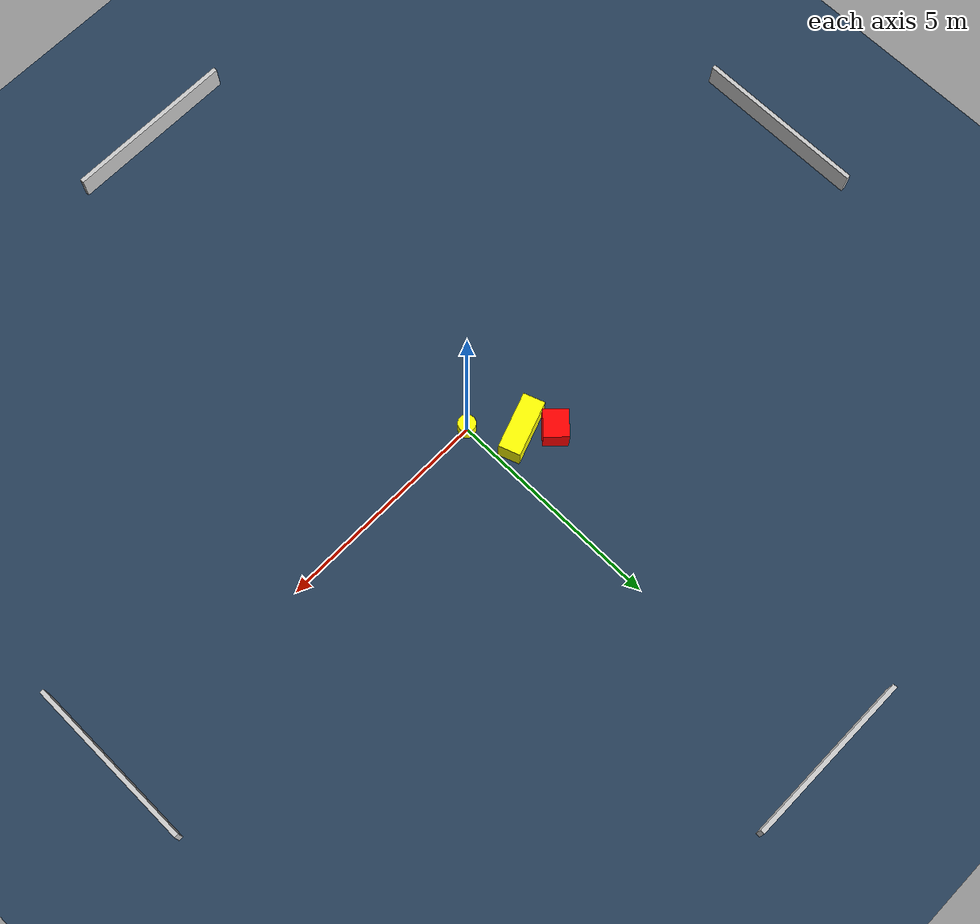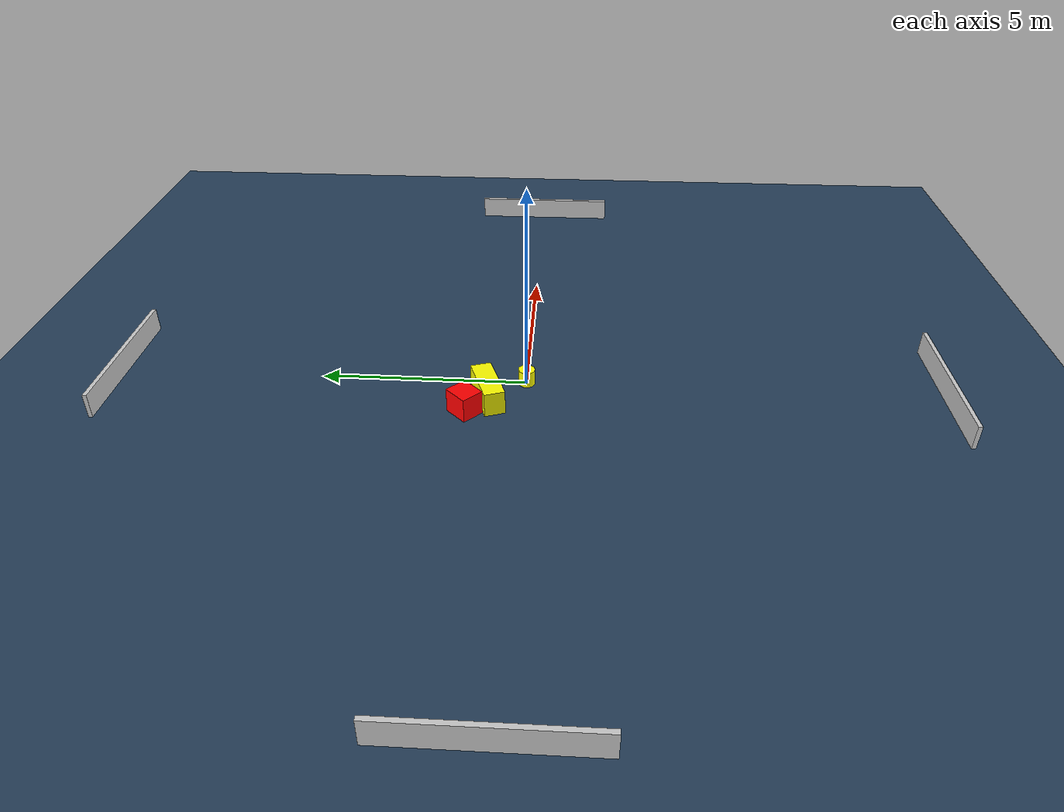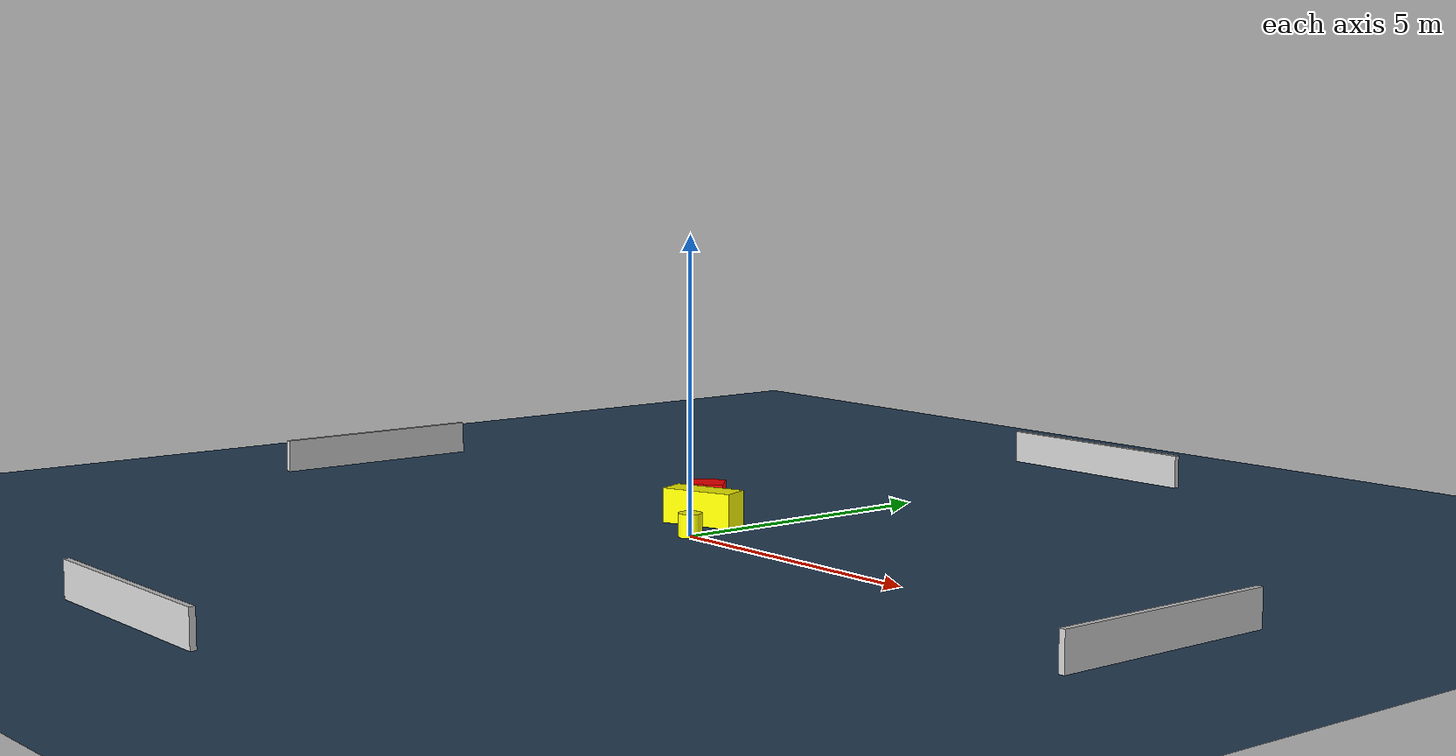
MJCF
<?xml version="1.0" ?>
<mujoco model="generated_environment">
  <option timestep="0.01" integrator="RK4" cone="elliptic"/>
  <default>
    <geom density="1"/>
  </default>
  <asset>
    <texture builtin="gradient" height="3072" name="skybox" rgb1="0.3 0.5 0.7" rgb2="0 0 0" type="skybox" width="512"/>
    <texture builtin="checker" height="300" name="groundplane" rgb1="0.2 0.3 0.4" rgb2="0.1 0.2 0.3" type="2d" width="300"/>
    <material name="groundplane" reflectance="0.2" texrepeat="5 5" texture="groundplane"/>
  </asset>
  <worldbody>
    <light dir="0 0 -1" directional="true" pos="0 0 1.5"/>
    <geom condim="3" friction="0.5 0.005 0.001" material="groundplane" name="floor" pos="0 0 0" size="0 0 0.05" type="plane"/>
    <body name="walls">
      <geom name="wall_1" condim="4" pos="-10.0 0.0 0.3" rgba="0.800000011920929 0.800000011920929 0.800000011920929 1.0" size="0.05 2.0 0.3" type="box"/>
      <geom name="wall_2" condim="4" pos="10.0 0.0 0.3" rgba="0.800000011920929 0.800000011920929 0.800000011920929 1.0" size="0.05 2.0 0.3" type="box"/>
      <geom name="wall_3" condim="4" pos="0.0 -10.0 0.3" rgba="0.800000011920929 0.800000011920929 0.800000011920929 1.0" size="2.0 0.05 0.3" type="box"/>
      <geom name="wall_4" condim="4" pos="0.0 10.0 0.3" rgba="0.800000011920929 0.800000011920929 0.800000011920929 1.0" size="2.0 0.05 0.3" type="box"/>
    </body>
    <body name="robot">
      <joint name="joint_x" type="slide" pos="0 0 0" axis="1 0 0"/>
      <joint name="joint_y" type="slide" pos="0 0 0" axis="0 1 0"/>
      <geom name="robot" type="cylinder" pos="0.0 0.0 0.2" size="0.2 0.2 0.0" mass="5.0" friction="1.0 0.005 0.0001" condim="4" rgba="1.0 1.0 0.0 1.0"/>
    </body>
    <body name="obstacle_1_movable">
      <geom name="obstacle_1_movable" condim="4" pos="-0.748928724722097 0.8810139835278583 0.3" euler="0 0 199.8851945002875" friction="0.0 0.005 0.001" rgba="1.0 1.0 0.0 1.0" size="0.6483439367021129 0.250683473643685 0.3" type="box" mass="0.1"/>
      <joint type="free"/>
    </body>
    <body name="obstacle_2_static">
      <geom name="obstacle_2_static" condim="4" pos="-1.273149046451718 1.3744141374361147 0.3" euler="0 0 225.56315048952348" friction="0.0 0.005 0.001" rgba="1.0 0.0 0.0 1.0" size="0.3158537256518155 0.28096903403886286 0.3" type="box"/>
    </body>
  </worldbody>
  <actuator>
    <motor name="actuator_x" joint="joint_x" gear="1" ctrlrange="-1 1"/>
    <motor name="actuator_y" joint="joint_y" gear="1" ctrlrange="-1 1"/>
  </actuator>
</mujoco>
